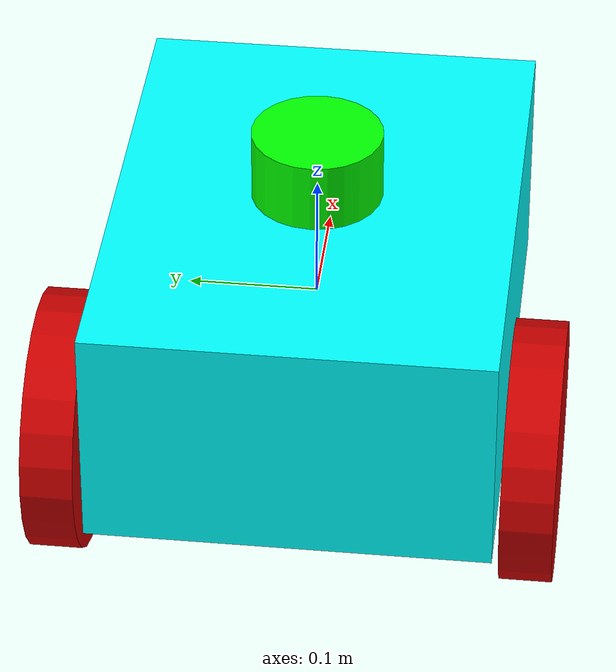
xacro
<?xml version="1.0"?>
<robot xmlns:xacro="http://www.ros.org/wiki/xacro"  name="robot">

    <xacro:include filename="materials.xacro"/>
    <xacro:include filename="inertial_macros.xacro"/>
    <xacro:include filename="wheel.xacro"/>
    <xacro:include filename="mob_diff_bot_core.xacro" />
    <xacro:include filename="mpu_6050.xacro" />
    <xacro:include filename="lidar.xacro" />

</robot>

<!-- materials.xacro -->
<robot xmlns:xacro="http://www.ros.org/wiki/xacro" >

    <material name="black">
        <color rgba="0.0 0.0 0.0 1.0"/>
    </material>

    <material name="blue">
        <color rgba="0.0 0.0 0.8 1.0"/>
    </material> -->

    <material name="green">
        <color rgba="0.0 1.0 0.0 1.0"/>
    </material>

    <material name="grey">
        <color rgba="0.2 0.2 0.2 1.0"/>
    </material>

    <material name="orange">
        <color rgba="${255/255} ${108/255} ${10/255} 1.0"/>
    </material>

    <material name="brown">
        <color rgba="${222/255} ${207/255} ${195/255} 1.0"/>
    </material>

    <material name="red">
        <color rgba="0.8 0.0 0.0 1.0"/>
    </material>

    <material name="white">
        <color rgba="1.0 1.0 1.0 1.0"/>
    </material>

    <material name="Cyan">
        <color rgba="0 1.0 1.0 1.0"/>
    </material>

</robot>

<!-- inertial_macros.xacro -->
<robot xmlns:xacro="http://www.ros.org/wiki/xacro" >

    <!-- Specify some standard inertial calculations https://en.wikipedia.org/wiki/List_of_moments_of_inertia -->
    <!-- These make use of xacro's mathematical functionality -->

    <xacro:macro name="box_inertia" params="m w h d">
        <inertial>
            <origin xyz="0 0 0" rpy="${pi/2} 0 ${pi/2}"/>
            <mass value="${m}"/>
            <inertia ixx="${(m/12) * (h*h + d*d)}" ixy="0.0" ixz="0.0" iyy="${(m/12) * (w*w + d*d)}" iyz="0.0" izz="${(m/12) * (w*w + h*h)}"/>
        </inertial>
    </xacro:macro>

    <xacro:macro name="cylinder_inertia" params="m r h">
        <inertial>
            <origin xyz="0 0 0" rpy="${pi/2} 0 0" />
            <mass value="${m}"/>
            <inertia ixx="${(m/12) * (3*r*r + h*h)}" ixy = "0" ixz = "0" iyy="${(m/12) * (3*r*r + h*h)}" iyz = "0" izz="${(m/2) * (r*r)}"/>
        </inertial>
    </xacro:macro>

    <xacro:macro name="sphere_inertia" params="m r">
        <inertial>
            <mass value="${m}"/>
            <inertia ixx="${(2/5) * m * (r*r)}" ixy="0.0" ixz="0.0" iyy="${(2/5) * m * (r*r)}" iyz="0.0" izz="${(2/5) * m * (r*r)}"/>
        </inertial>
    </xacro:macro>

</robot>

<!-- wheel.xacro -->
<robot xmlns:xacro="http://www.ros.org/wiki/xacro" >
<!-- Wheels Xacros-->
    <xacro:macro name="wheel" params="prefix x_reflect y_reflect">
        <link name="${prefix}_link">
            <visual>
                <origin xyz="0 0 0" rpy="${pi/2} 0 0"/>
                <geometry>
                    <cylinder radius="${wheel_radius}" length="${wheel_width}"/>
                </geometry>
                <material name="red"/>
            </visual>

            <collision>
                <origin xyz="0 0 0" rpy="${pi/2} 0 0"/>
                <geometry>
                    <cylinder radius="${wheel_radius}" length="${wheel_width}"/>
                </geometry>
            </collision>

            <xacro:cylinder_inertia m="0.5" r="${wheel_radius}" h="${wheel_width}"/>
        </link>

        <joint name="${prefix}_joint" type="continuous">
            <parent link="base_link"/>
            <child link="${prefix}_link"/>
            <origin xyz="${x_reflect*wheel_xoff} ${y_reflect*((base_width/2)+wheel_ygap)} ${-wheel_zoff}" rpy="0 0 0"/>
        </joint>

        <gazebo reference="${prefix}">
            <material>Gazebo/Grey</material>
        </gazebo>
    </xacro:macro>
</robot>

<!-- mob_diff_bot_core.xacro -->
<robot xmlns:xacro="http://www.ros.org/wiki/xacro" >

    <!-- Define robot constants -->
    <xacro:property name="base_width" value="0.31"/>
    <xacro:property name="base_length" value="0.42"/>
    <xacro:property name="base_height" value="0.18"/>
    <xacro:property name="wheel_radius" value="0.10"/>
    <xacro:property name="wheel_width" value="0.04"/>
    <xacro:property name="wheel_ygap" value="0.025"/>
    <xacro:property name="wheel_zoff" value="0.05"/>
    <xacro:property name="wheel_xoff" value="0.12"/>
    <xacro:property name="caster_xoff" value="0.14"/>

    <!-- ROBOT BASE LINK -->

    <link name="base_link">
        <visual>
         <geometry>
            <box size="${base_length} ${base_width} ${base_height}"/>
         </geometry>
         <material name="Cyan">
           <color rgba="0 1.0 1.0 1.0"/>
         </material>
        </visual>

        <collision>
            <geometry>
                <box size="${base_length} ${base_width} ${base_height}"/>
            </geometry>
        </collision>

        <xacro:box_inertia m="15" w="${base_width}" d="${base_length}" h="${base_height}"/>
    </link>

    <!-- Robot Footprint -->
    <link name="base_footprint"/>

    <joint name="base_joint" type="fixed">
        <parent link="base_link"/>
        <child link="base_footprint"/>
        <origin xyz="0.0 0.0 ${-(wheel_radius+wheel_zoff)}" rpy="0 0 0"/>
    </joint>

    <!-- Defining Left & right Wheels -->
    <xacro:wheel prefix="left_wheel" x_reflect="-1" y_reflect="1" />
    <xacro:wheel prefix="right_wheel" x_reflect="-1" y_reflect="-1" />

    <!-- Front Castor Wheel -->
    <link name="front_caster">
        <visual>
            <geometry>
                <sphere radius="${(wheel_radius+wheel_zoff-(base_height/2))}"/>
            </geometry>
            <material name="white"/>
        </visual>

        <collision>
            <origin xyz="0 0 0" rpy="0 0 0"/>
            <geometry>
                <sphere radius="${(wheel_radius+wheel_zoff-(base_height/2))}"/>
            </geometry>
        </collision>

        <xacro:sphere_inertia m="0.5" r="${(wheel_radius+wheel_zoff-(base_height/2))}"/>
    </link>

    <joint name="caster_joint" type="fixed">
        <parent link="base_link"/>
        <child link="front_caster"/>
        <origin xyz="${caster_xoff} 0.0 ${-(base_height/2)}" rpy="0 0 0"/>
    </joint>

    <gazebo reference="front_caster">
        <material>Gazebo/White</material>
        <mu1 value="0.001"/>
        <mu2 value="0.001"/>
    </gazebo>
</robot>

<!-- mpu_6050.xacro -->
<robot xmlns:xacro="http://www.ros.org/wiki/xacro" >

<link name="imu_link">
    <visual>
      <geometry>
        <box size="0.1 0.1 0.1"/>
      </geometry>
    </visual>

    <collision>
      <geometry>
        <box size="0.1 0.1 0.1"/>
      </geometry>
    </collision>

    <xacro:box_inertia m="0.1" w="0.1" d="0.1" h="0.1"/>
  </link>

  <joint name="imu_joint" type="fixed">
    <parent link="base_link"/>
    <child link="imu_link"/>
    <origin xyz="0 0 0.01"/>
  </joint>

  <gazebo reference="imu_link">
    <sensor name="imu_sensor" type="imu">
      <plugin filename="libgazebo_ros_imu_sensor.so" name="imu_plugin">
        <ros>
          <namespace>/demo</namespace>
          <remapping>~/out:=imu</remapping>
        </ros>
        <initial_orientation_as_reference>false</initial_orientation_as_reference>
      </plugin>
      <always_on>true</always_on>
      <update_rate>100</update_rate>
      <visualize>true</visualize>
     <imu>
     	<angular_velocity>
     	  <x>
     	    <noise type="gaussian">
              <mean>0.0</mean>
              <stddev>2e-4</stddev>
              <bias_mean>0.0000075</bias_mean>
              <bias_stddev>0.0000008</bias_stddev>
            </noise>
          </x>
          <y>
            <noise type="gaussian">
              <mean>0.0</mean>
              <stddev>2e-4</stddev>
              <bias_mean>0.0000075</bias_mean>
              <bias_stddev>0.0000008</bias_stddev>
            </noise>
          </y>
          <z>
            <noise type="gaussian">
              <mean>0.0</mean>
              <stddev>2e-4</stddev>
              <bias_mean>0.0000075</bias_mean>
              <bias_stddev>0.0000008</bias_stddev>
            </noise>
          </z>
        </angular_velocity>
        <linear_acceleration>
          <x>
            <noise type="gaussian">
              <mean>0.0</mean>
              <stddev>1.7e-2</stddev>
              <bias_mean>0.1</bias_mean>
              <bias_stddev>0.001</bias_stddev>
            </noise>
          </x>
          <y>
            <noise type="gaussian">
              <mean>0.0</mean>
              <stddev>1.7e-2</stddev>
              <bias_mean>0.1</bias_mean>
              <bias_stddev>0.001</bias_stddev>
            </noise>
          </y>
          <z>
            <noise type="gaussian">
              <mean>0.0</mean>
              <stddev>1.7e-2</stddev>
              <bias_mean>0.1</bias_mean>
              <bias_stddev>0.001</bias_stddev>
            </noise>
          </z>
        </linear_acceleration>
      </imu>
    </sensor>
  </gazebo>
</robot>

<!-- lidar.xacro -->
<robot xmlns:xacro="http://www.ros.org/wiki/xacro" >

    <link name="laser_frame">
        <inertial>
            <origin xyz="0 0 0" rpy="0 0 0"/>
            <mass value="0.125"/>
            <inertia ixx="0.001"  ixy="0"  ixz="0" iyy="0.001" iyz="0" izz="0.001" />
        </inertial>

        <collision>
            <origin xyz="0 0 0" rpy="0 0 0"/>
            <geometry>
                <cylinder radius="0.0508" length="0.055"/>
            </geometry>
        </collision>

        <visual>
            <origin xyz="0 0 0" rpy="0 0 0"/>
            <geometry>
                <cylinder radius="0.0508" length="0.055"/>
            </geometry>
            <material name="green"/>
        </visual>
    </link>

    <joint name="lidar_joint" type="fixed">
        <parent link="base_link"/>
        <child link="laser_frame"/>
        <origin xyz="0 0 0.12" rpy="0 0 0"/>
    </joint>

    <gazebo reference="lidar_frame">
        <material>Gazebo/Red</material>
        <sensor name="laser" type="ray">
            <pose> 0 0 0 0 0 0 </pose>
            <visualize>false</visualize>
            <update_rate>10</update_rate>
            <ray>
                <scan>
                    <horizontal>
                        <samples>360</samples>
                        <min_angle>-3.14</min_angle>
                        <max_angle>3.14</max_angle>
                    </horizontal>
                </scan>
                <range>
                    <min>0.3</min>
                    <max>12</max>
                </range>
            </ray>
            <plugin name="laser_controller" filename="libgazebo_ros_ray_sensor.so">
                <ros>
                    <argument>~/out:=scan</argument>
                </ros>
                <output_type>sensor_msgs/LaserScan</output_type>
                <frame_name>laser_frame</frame_name>
            </plugin>
        </sensor>
    </gazebo>

</robot>
